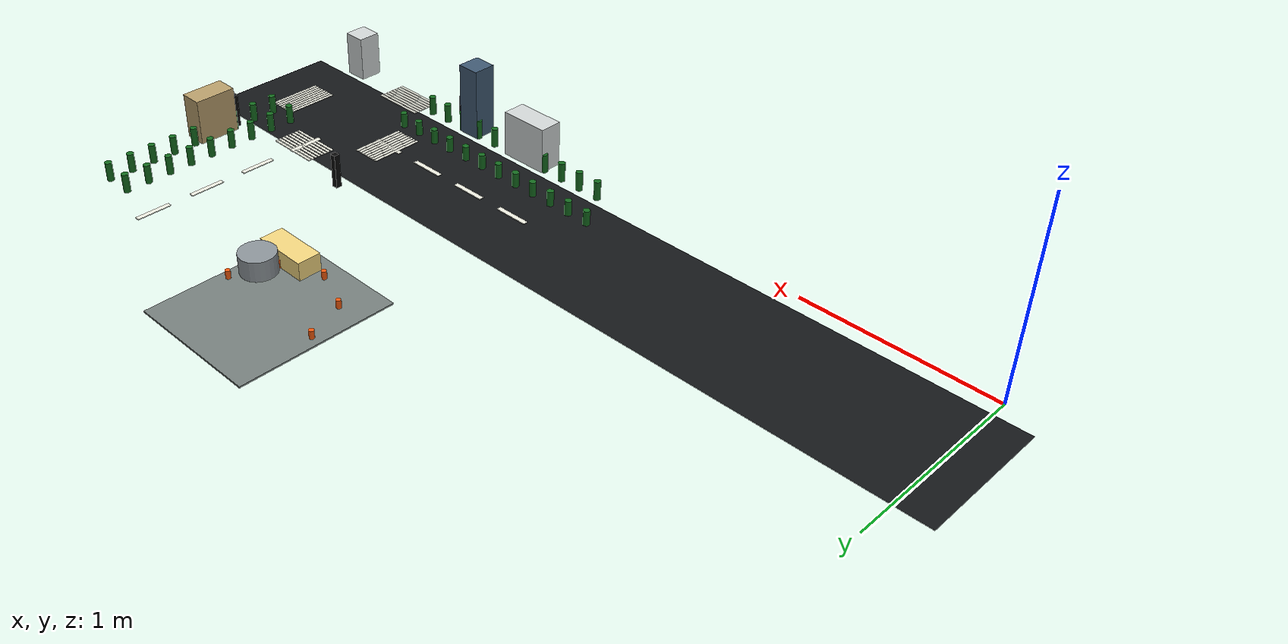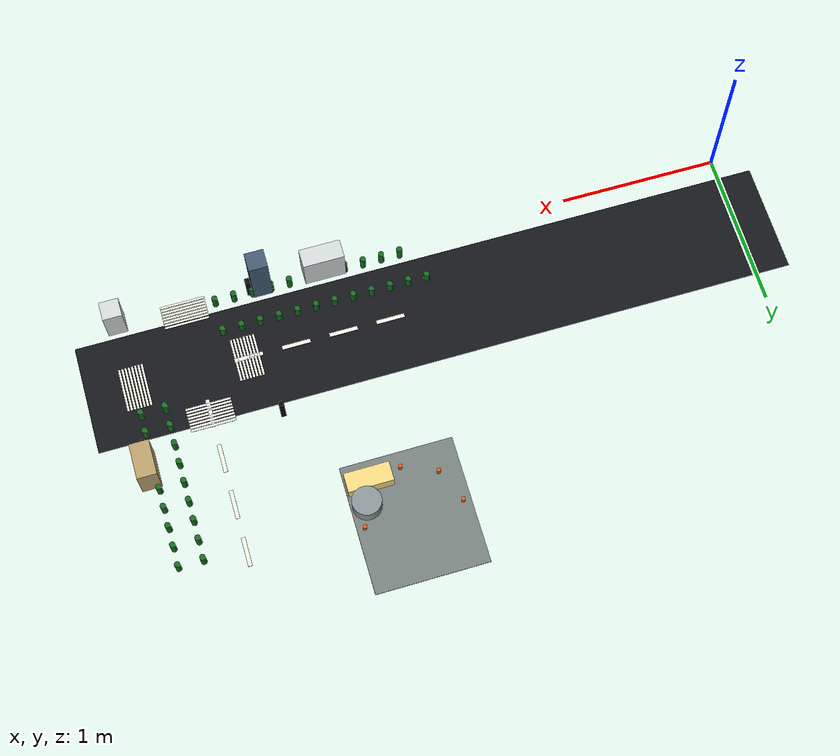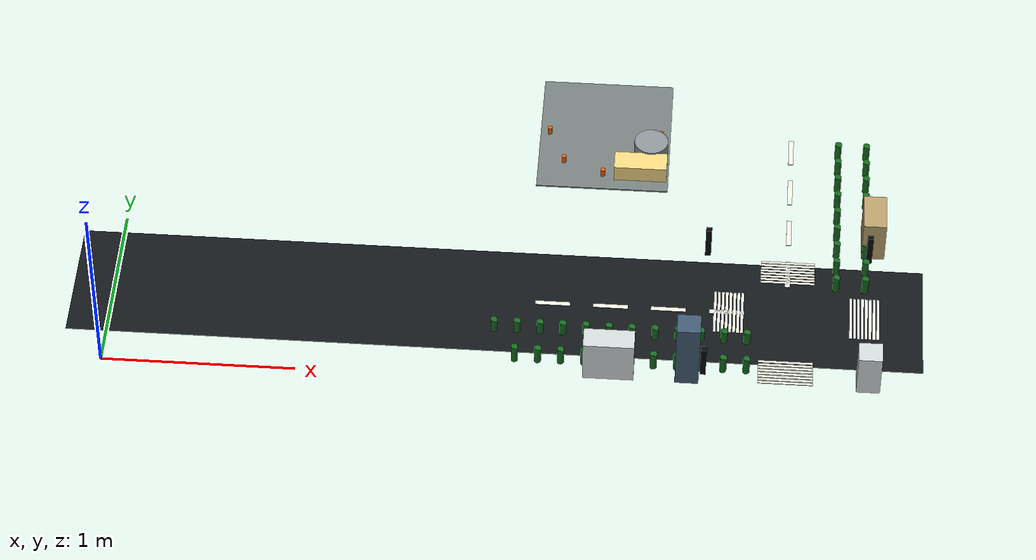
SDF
<sdf version="1.7">
 <world name="sandbox">
  <model name="RD-RING-S">
   <static>true</static>
   <pose>2.0 0.5 0.051000000000000004 0 0 0</pose>
   <link name="link">
    <collision name="collision">
     <geometry><box><size>4.4 0.7000000000000001 0.002</size></box></geometry>
    </collision>
    <visual name="visual">
     <geometry><box><size>4.4 0.7000000000000001 0.002</size></box></geometry>
     <material><ambient>0.08 0.09 0.1 1</ambient><diffuse>0.08 0.09 0.1 1</diffuse></material>
    </visual>
   </link>
  </model>
  <model name="LM-RING-E-01">
   <static>true</static>
   <pose>3.5 0.79 0.05450000000000001 0 0 0</pose>
   <link name="link">
    <collision name="collision"><geometry><box><size>0.025 0.18 0.004</size></box></geometry></collision>
    <visual name="visual">
     <geometry><box><size>0.025 0.18 0.004</size></box></geometry>
     <material><ambient>0.93 0.93 0.88 1</ambient><diffuse>0.93 0.93 0.88 1</diffuse></material>
    </visual>
   </link>
  </model>
  <model name="LM-RING-E-02">
   <static>true</static>
   <pose>3.5 1.09 0.05450000000000001 0 0 0</pose>
   <link name="link">
    <collision name="collision"><geometry><box><size>0.025 0.18 0.004</size></box></geometry></collision>
    <visual name="visual">
     <geometry><box><size>0.025 0.18 0.004</size></box></geometry>
     <material><ambient>0.93 0.93 0.88 1</ambient><diffuse>0.93 0.93 0.88 1</diffuse></material>
    </visual>
   </link>
  </model>
  <model name="LM-RING-E-03">
   <static>true</static>
   <pose>3.5 1.3900000000000001 0.05450000000000001 0 0 0</pose>
   <link name="link">
    <collision name="collision"><geometry><box><size>0.025 0.18 0.004</size></box></geometry></collision>
    <visual name="visual">
     <geometry><box><size>0.025 0.18 0.004</size></box></geometry>
     <material><ambient>0.93 0.93 0.88 1</ambient><diffuse>0.93 0.93 0.88 1</diffuse></material>
    </visual>
   </link>
  </model>
  <model name="LM-RING-E-04">
   <static>true</static>
   <pose>3.5 1.69 0.05450000000000001 0 0 0</pose>
   <link name="link">
    <collision name="collision"><geometry><box><size>0.025 0.18 0.004</size></box></geometry></collision>
    <visual name="visual">
     <geometry><box><size>0.025 0.18 0.004</size></box></geometry>
     <material><ambient>0.93 0.93 0.88 1</ambient><diffuse>0.93 0.93 0.88 1</diffuse></material>
    </visual>
   </link>
  </model>
  <model name="LM-RING-S-06">
   <static>true</static>
   <pose>2.29 0.5 0.05450000000000001 0 0 0</pose>
   <link name="link">
    <collision name="collision"><geometry><box><size>0.18 0.025 0.004</size></box></geometry></collision>
    <visual name="visual">
     <geometry><box><size>0.18 0.025 0.004</size></box></geometry>
     <material><ambient>0.93 0.93 0.88 1</ambient><diffuse>0.93 0.93 0.88 1</diffuse></material>
    </visual>
   </link>
  </model>
  <model name="LM-RING-S-07">
   <static>true</static>
   <pose>2.59 0.5 0.05450000000000001 0 0 0</pose>
   <link name="link">
    <collision name="collision"><geometry><box><size>0.18 0.025 0.004</size></box></geometry></collision>
    <visual name="visual">
     <geometry><box><size>0.18 0.025 0.004</size></box></geometry>
     <material><ambient>0.93 0.93 0.88 1</ambient><diffuse>0.93 0.93 0.88 1</diffuse></material>
    </visual>
   </link>
  </model>
  <model name="LM-RING-S-08">
   <static>true</static>
   <pose>2.89 0.5 0.05450000000000001 0 0 0</pose>
   <link name="link">
    <collision name="collision"><geometry><box><size>0.18 0.025 0.004</size></box></geometry></collision>
    <visual name="visual">
     <geometry><box><size>0.18 0.025 0.004</size></box></geometry>
     <material><ambient>0.93 0.93 0.88 1</ambient><diffuse>0.93 0.93 0.88 1</diffuse></material>
    </visual>
   </link>
  </model>
  <model name="LM-RING-S-09">
   <static>true</static>
   <pose>3.19 0.5 0.05450000000000001 0 0 0</pose>
   <link name="link">
    <collision name="collision"><geometry><box><size>0.18 0.025 0.004</size></box></geometry></collision>
    <visual name="visual">
     <geometry><box><size>0.18 0.025 0.004</size></box></geometry>
     <material><ambient>0.93 0.93 0.88 1</ambient><diffuse>0.93 0.93 0.88 1</diffuse></material>
    </visual>
   </link>
  </model>
  <model name="CW-SE-X-01">
   <static>true</static>
   <pose>3.5 0.73 0.05450000000000001 0 0 0</pose>
   <link name="link">
    <collision name="collision"><geometry><box><size>0.28 0.014 0.004</size></box></geometry></collision>
    <visual name="visual">
     <geometry><box><size>0.28 0.014 0.004</size></box></geometry>
     <material><ambient>0.93 0.93 0.88 1</ambient><diffuse>0.93 0.93 0.88 1</diffuse></material>
    </visual>
   </link>
  </model>
  <model name="CW-SE-X-02">
   <static>true</static>
   <pose>3.5 0.75 0.05450000000000001 0 0 0</pose>
   <link name="link">
    <collision name="collision"><geometry><box><size>0.28 0.014 0.004</size></box></geometry></collision>
    <visual name="visual">
     <geometry><box><size>0.28 0.014 0.004</size></box></geometry>
     <material><ambient>0.93 0.93 0.88 1</ambient><diffuse>0.93 0.93 0.88 1</diffuse></material>
    </visual>
   </link>
  </model>
  <model name="CW-SE-X-03">
   <static>true</static>
   <pose>3.5 0.77 0.05450000000000001 0 0 0</pose>
   <link name="link">
    <collision name="collision"><geometry><box><size>0.28 0.014 0.004</size></box></geometry></collision>
    <visual name="visual">
     <geometry><box><size>0.28 0.014 0.004</size></box></geometry>
     <material><ambient>0.93 0.93 0.88 1</ambient><diffuse>0.93 0.93 0.88 1</diffuse></material>
    </visual>
   </link>
  </model>
  <model name="CW-SE-X-04">
   <static>true</static>
   <pose>3.5 0.79 0.05450000000000001 0 0 0</pose>
   <link name="link">
    <collision name="collision"><geometry><box><size>0.28 0.014 0.004</size></box></geometry></collision>
    <visual name="visual">
     <geometry><box><size>0.28 0.014 0.004</size></box></geometry>
     <material><ambient>0.93 0.93 0.88 1</ambient><diffuse>0.93 0.93 0.88 1</diffuse></material>
    </visual>
   </link>
  </model>
  <model name="CW-SE-X-05">
   <static>true</static>
   <pose>3.5 0.81 0.05450000000000001 0 0 0</pose>
   <link name="link">
    <collision name="collision"><geometry><box><size>0.28 0.014 0.004</size></box></geometry></collision>
    <visual name="visual">
     <geometry><box><size>0.28 0.014 0.004</size></box></geometry>
     <material><ambient>0.93 0.93 0.88 1</ambient><diffuse>0.93 0.93 0.88 1</diffuse></material>
    </visual>
   </link>
  </model>
  <model name="CW-SE-X-06">
   <static>true</static>
   <pose>3.5 0.8300000000000001 0.05450000000000001 0 0 0</pose>
   <link name="link">
    <collision name="collision"><geometry><box><size>0.28 0.014 0.004</size></box></geometry></collision>
    <visual name="visual">
     <geometry><box><size>0.28 0.014 0.004</size></box></geometry>
     <material><ambient>0.93 0.93 0.88 1</ambient><diffuse>0.93 0.93 0.88 1</diffuse></material>
    </visual>
   </link>
  </model>
  <model name="CW-SE-X-07">
   <static>true</static>
   <pose>3.5 0.8500000000000001 0.05450000000000001 0 0 0</pose>
   <link name="link">
    <collision name="collision"><geometry><box><size>0.28 0.014 0.004</size></box></geometry></collision>
    <visual name="visual">
     <geometry><box><size>0.28 0.014 0.004</size></box></geometry>
     <material><ambient>0.93 0.93 0.88 1</ambient><diffuse>0.93 0.93 0.88 1</diffuse></material>
    </visual>
   </link>
  </model>
  <model name="CW-SE-X-08">
   <static>true</static>
   <pose>3.5 0.8700000000000001 0.05450000000000001 0 0 0</pose>
   <link name="link">
    <collision name="collision"><geometry><box><size>0.28 0.014 0.004</size></box></geometry></collision>
    <visual name="visual">
     <geometry><box><size>0.28 0.014 0.004</size></box></geometry>
     <material><ambient>0.93 0.93 0.88 1</ambient><diffuse>0.93 0.93 0.88 1</diffuse></material>
    </visual>
   </link>
  </model>
  <model name="CW-SE-Y-01">
   <static>true</static>
   <pose>3.1300000000000003 0.5 0.05450000000000001 0 0 0</pose>
   <link name="link">
    <collision name="collision"><geometry><box><size>0.014 0.28 0.004</size></box></geometry></collision>
    <visual name="visual">
     <geometry><box><size>0.014 0.28 0.004</size></box></geometry>
     <material><ambient>0.93 0.93 0.88 1</ambient><diffuse>0.93 0.93 0.88 1</diffuse></material>
    </visual>
   </link>
  </model>
  <model name="CW-SE-Y-02">
   <static>true</static>
   <pose>3.1500000000000004 0.5 0.05450000000000001 0 0 0</pose>
   <link name="link">
    <collision name="collision"><geometry><box><size>0.014 0.28 0.004</size></box></geometry></collision>
    <visual name="visual">
     <geometry><box><size>0.014 0.28 0.004</size></box></geometry>
     <material><ambient>0.93 0.93 0.88 1</ambient><diffuse>0.93 0.93 0.88 1</diffuse></material>
    </visual>
   </link>
  </model>
  <model name="CW-SE-Y-03">
   <static>true</static>
   <pose>3.1700000000000004 0.5 0.05450000000000001 0 0 0</pose>
   <link name="link">
    <collision name="collision"><geometry><box><size>0.014 0.28 0.004</size></box></geometry></collision>
    <visual name="visual">
     <geometry><box><size>0.014 0.28 0.004</size></box></geometry>
     <material><ambient>0.93 0.93 0.88 1</ambient><diffuse>0.93 0.93 0.88 1</diffuse></material>
    </visual>
   </link>
  </model>
  <model name="CW-SE-Y-04">
   <static>true</static>
   <pose>3.1900000000000004 0.5 0.05450000000000001 0 0 0</pose>
   <link name="link">
    <collision name="collision"><geometry><box><size>0.014 0.28 0.004</size></box></geometry></collision>
    <visual name="visual">
     <geometry><box><size>0.014 0.28 0.004</size></box></geometry>
     <material><ambient>0.93 0.93 0.88 1</ambient><diffuse>0.93 0.93 0.88 1</diffuse></material>
    </visual>
   </link>
  </model>
  <model name="CW-SE-Y-05">
   <static>true</static>
   <pose>3.21 0.5 0.05450000000000001 0 0 0</pose>
   <link name="link">
    <collision name="collision"><geometry><box><size>0.014 0.28 0.004</size></box></geometry></collision>
    <visual name="visual">
     <geometry><box><size>0.014 0.28 0.004</size></box></geometry>
     <material><ambient>0.93 0.93 0.88 1</ambient><diffuse>0.93 0.93 0.88 1</diffuse></material>
    </visual>
   </link>
  </model>
  <model name="CW-SE-Y-06">
   <static>true</static>
   <pose>3.23 0.5 0.05450000000000001 0 0 0</pose>
   <link name="link">
    <collision name="collision"><geometry><box><size>0.014 0.28 0.004</size></box></geometry></collision>
    <visual name="visual">
     <geometry><box><size>0.014 0.28 0.004</size></box></geometry>
     <material><ambient>0.93 0.93 0.88 1</ambient><diffuse>0.93 0.93 0.88 1</diffuse></material>
    </visual>
   </link>
  </model>
  <model name="CW-SE-Y-07">
   <static>true</static>
   <pose>3.25 0.5 0.05450000000000001 0 0 0</pose>
   <link name="link">
    <collision name="collision"><geometry><box><size>0.014 0.28 0.004</size></box></geometry></collision>
    <visual name="visual">
     <geometry><box><size>0.014 0.28 0.004</size></box></geometry>
     <material><ambient>0.93 0.93 0.88 1</ambient><diffuse>0.93 0.93 0.88 1</diffuse></material>
    </visual>
   </link>
  </model>
  <model name="CW-SE-Y-08">
   <static>true</static>
   <pose>3.27 0.5 0.05450000000000001 0 0 0</pose>
   <link name="link">
    <collision name="collision"><geometry><box><size>0.014 0.28 0.004</size></box></geometry></collision>
    <visual name="visual">
     <geometry><box><size>0.014 0.28 0.004</size></box></geometry>
     <material><ambient>0.93 0.93 0.88 1</ambient><diffuse>0.93 0.93 0.88 1</diffuse></material>
    </visual>
   </link>
  </model>
  <model name="CW-EXT-E-S-01">
   <static>true</static>
   <pose>3.5 0.03 0.05450000000000001 0 0 0</pose>
   <link name="link">
    <collision name="collision"><geometry><box><size>0.28 0.014 0.004</size></box></geometry></collision>
    <visual name="visual">
     <geometry><box><size>0.28 0.014 0.004</size></box></geometry>
     <material><ambient>0.93 0.93 0.88 1</ambient><diffuse>0.93 0.93 0.88 1</diffuse></material>
    </visual>
   </link>
  </model>
  <model name="CW-EXT-E-S-02">
   <static>true</static>
   <pose>3.5 0.05 0.05450000000000001 0 0 0</pose>
   <link name="link">
    <collision name="collision"><geometry><box><size>0.28 0.014 0.004</size></box></geometry></collision>
    <visual name="visual">
     <geometry><box><size>0.28 0.014 0.004</size></box></geometry>
     <material><ambient>0.93 0.93 0.88 1</ambient><diffuse>0.93 0.93 0.88 1</diffuse></material>
    </visual>
   </link>
  </model>
  <model name="CW-EXT-E-S-03">
   <static>true</static>
   <pose>3.5 0.07 0.05450000000000001 0 0 0</pose>
   <link name="link">
    <collision name="collision"><geometry><box><size>0.28 0.014 0.004</size></box></geometry></collision>
    <visual name="visual">
     <geometry><box><size>0.28 0.014 0.004</size></box></geometry>
     <material><ambient>0.93 0.93 0.88 1</ambient><diffuse>0.93 0.93 0.88 1</diffuse></material>
    </visual>
   </link>
  </model>
  <model name="CW-EXT-E-S-04">
   <static>true</static>
   <pose>3.5 0.09000000000000001 0.05450000000000001 0 0 0</pose>
   <link name="link">
    <collision name="collision"><geometry><box><size>0.28 0.014 0.004</size></box></geometry></collision>
    <visual name="visual">
     <geometry><box><size>0.28 0.014 0.004</size></box></geometry>
     <material><ambient>0.93 0.93 0.88 1</ambient><diffuse>0.93 0.93 0.88 1</diffuse></material>
    </visual>
   </link>
  </model>
  <model name="CW-EXT-E-S-05">
   <static>true</static>
   <pose>3.5 0.11 0.05450000000000001 0 0 0</pose>
   <link name="link">
    <collision name="collision"><geometry><box><size>0.28 0.014 0.004</size></box></geometry></collision>
    <visual name="visual">
     <geometry><box><size>0.28 0.014 0.004</size></box></geometry>
     <material><ambient>0.93 0.93 0.88 1</ambient><diffuse>0.93 0.93 0.88 1</diffuse></material>
    </visual>
   </link>
  </model>
  <model name="CW-EXT-E-S-06">
   <static>true</static>
   <pose>3.5 0.13 0.05450000000000001 0 0 0</pose>
   <link name="link">
    <collision name="collision"><geometry><box><size>0.28 0.014 0.004</size></box></geometry></collision>
    <visual name="visual">
     <geometry><box><size>0.28 0.014 0.004</size></box></geometry>
     <material><ambient>0.93 0.93 0.88 1</ambient><diffuse>0.93 0.93 0.88 1</diffuse></material>
    </visual>
   </link>
  </model>
  <model name="CW-EXT-E-S-07">
   <static>true</static>
   <pose>3.5 0.15000000000000002 0.05450000000000001 0 0 0</pose>
   <link name="link">
    <collision name="collision"><geometry><box><size>0.28 0.014 0.004</size></box></geometry></collision>
    <visual name="visual">
     <geometry><box><size>0.28 0.014 0.004</size></box></geometry>
     <material><ambient>0.93 0.93 0.88 1</ambient><diffuse>0.93 0.93 0.88 1</diffuse></material>
    </visual>
   </link>
  </model>
  <model name="CW-EXT-E-S-08">
   <static>true</static>
   <pose>3.5 0.17 0.05450000000000001 0 0 0</pose>
   <link name="link">
    <collision name="collision"><geometry><box><size>0.28 0.014 0.004</size></box></geometry></collision>
    <visual name="visual">
     <geometry><box><size>0.28 0.014 0.004</size></box></geometry>
     <material><ambient>0.93 0.93 0.88 1</ambient><diffuse>0.93 0.93 0.88 1</diffuse></material>
    </visual>
   </link>
  </model>
  <model name="CW-EXT-S-E-01">
   <static>true</static>
   <pose>3.83 0.5 0.05450000000000001 0 0 0</pose>
   <link name="link">
    <collision name="collision"><geometry><box><size>0.014 0.28 0.004</size></box></geometry></collision>
    <visual name="visual">
     <geometry><box><size>0.014 0.28 0.004</size></box></geometry>
     <material><ambient>0.93 0.93 0.88 1</ambient><diffuse>0.93 0.93 0.88 1</diffuse></material>
    </visual>
   </link>
  </model>
  <model name="CW-EXT-S-E-02">
   <static>true</static>
   <pose>3.85 0.5 0.05450000000000001 0 0 0</pose>
   <link name="link">
    <collision name="collision"><geometry><box><size>0.014 0.28 0.004</size></box></geometry></collision>
    <visual name="visual">
     <geometry><box><size>0.014 0.28 0.004</size></box></geometry>
     <material><ambient>0.93 0.93 0.88 1</ambient><diffuse>0.93 0.93 0.88 1</diffuse></material>
    </visual>
   </link>
  </model>
  <model name="CW-EXT-S-E-03">
   <static>true</static>
   <pose>3.87 0.5 0.05450000000000001 0 0 0</pose>
   <link name="link">
    <collision name="collision"><geometry><box><size>0.014 0.28 0.004</size></box></geometry></collision>
    <visual name="visual">
     <geometry><box><size>0.014 0.28 0.004</size></box></geometry>
     <material><ambient>0.93 0.93 0.88 1</ambient><diffuse>0.93 0.93 0.88 1</diffuse></material>
    </visual>
   </link>
  </model>
  <model name="CW-EXT-S-E-04">
   <static>true</static>
   <pose>3.89 0.5 0.05450000000000001 0 0 0</pose>
   <link name="link">
    <collision name="collision"><geometry><box><size>0.014 0.28 0.004</size></box></geometry></collision>
    <visual name="visual">
     <geometry><box><size>0.014 0.28 0.004</size></box></geometry>
     <material><ambient>0.93 0.93 0.88 1</ambient><diffuse>0.93 0.93 0.88 1</diffuse></material>
    </visual>
   </link>
  </model>
  <model name="CW-EXT-S-E-05">
   <static>true</static>
   <pose>3.9099999999999997 0.5 0.05450000000000001 0 0 0</pose>
   <link name="link">
    <collision name="collision"><geometry><box><size>0.014 0.28 0.004</size></box></geometry></collision>
    <visual name="visual">
     <geometry><box><size>0.014 0.28 0.004</size></box></geometry>
     <material><ambient>0.93 0.93 0.88 1</ambient><diffuse>0.93 0.93 0.88 1</diffuse></material>
    </visual>
   </link>
  </model>
  <model name="CW-EXT-S-E-06">
   <static>true</static>
   <pose>3.9299999999999997 0.5 0.05450000000000001 0 0 0</pose>
   <link name="link">
    <collision name="collision"><geometry><box><size>0.014 0.28 0.004</size></box></geometry></collision>
    <visual name="visual">
     <geometry><box><size>0.014 0.28 0.004</size></box></geometry>
     <material><ambient>0.93 0.93 0.88 1</ambient><diffuse>0.93 0.93 0.88 1</diffuse></material>
    </visual>
   </link>
  </model>
  <model name="CW-EXT-S-E-07">
   <static>true</static>
   <pose>3.9499999999999997 0.5 0.05450000000000001 0 0 0</pose>
   <link name="link">
    <collision name="collision"><geometry><box><size>0.014 0.28 0.004</size></box></geometry></collision>
    <visual name="visual">
     <geometry><box><size>0.014 0.28 0.004</size></box></geometry>
     <material><ambient>0.93 0.93 0.88 1</ambient><diffuse>0.93 0.93 0.88 1</diffuse></material>
    </visual>
   </link>
  </model>
  <model name="CW-EXT-S-E-08">
   <static>true</static>
   <pose>3.9699999999999998 0.5 0.05450000000000001 0 0 0</pose>
   <link name="link">
    <collision name="collision"><geometry><box><size>0.014 0.28 0.004</size></box></geometry></collision>
    <visual name="visual">
     <geometry><box><size>0.014 0.28 0.004</size></box></geometry>
     <material><ambient>0.93 0.93 0.88 1</ambient><diffuse>0.93 0.93 0.88 1</diffuse></material>
    </visual>
   </link>
  </model>
  <model name="IND-SE-PAD">
   <static>true</static>
   <pose>2.5 1.75 0.054000000000000006 0 0 0</pose>
   <link name="link">
    <collision name="collision">
     <geometry><box><size>0.7000000000000001 0.8 0.008</size></box></geometry>
    </collision>
    <visual name="visual">
     <geometry><box><size>0.7000000000000001 0.8 0.008</size></box></geometry>
     <material><ambient>0.46 0.5 0.49 1</ambient><diffuse>0.46 0.5 0.49 1</diffuse></material>
    </visual>
   </link>
  </model>
  <model name="SE-T03">
   <static>true</static>
   <pose>2.75 1.62 0.10500000000000001 0 0 0</pose>
   <link name="link">
    <collision name="collision">
     <geometry><cylinder><radius>0.09</radius><length>0.11</length></cylinder></geometry>
    </collision>
    <visual name="visual">
     <geometry><cylinder><radius>0.09</radius><length>0.11</length></cylinder></geometry>
     <material><ambient>0.55 0.58 0.6 1</ambient><diffuse>0.55 0.58 0.6 1</diffuse></material>
    </visual>
   </link>
  </model>
  <model name="SE-B02">
   <static>true</static>
   <pose>2.7 1.48 0.1 0 0 0</pose>
   <link name="link">
    <collision name="collision"><geometry><box><size>0.28 0.12 0.1</size></box></geometry></collision>
    <visual name="visual">
     <geometry><box><size>0.28 0.12 0.1</size></box></geometry>
     <material><ambient>0.95 0.84 0.5 1</ambient><diffuse>0.95 0.84 0.5 1</diffuse></material>
    </visual>
   </link>
  </model>
  <model name="BLD-R01">
   <static>true</static>
   <pose>3.94 1.05 0.16999999999999998 0 0 0</pose>
   <link name="link">
    <collision name="collision"><geometry><box><size>0.12 0.22 0.24</size></box></geometry></collision>
    <visual name="visual">
     <geometry><box><size>0.12 0.22 0.24</size></box></geometry>
     <material><ambient>0.72 0.62 0.42 1</ambient><diffuse>0.72 0.62 0.42 1</diffuse></material>
    </visual>
   </link>
  </model>
  <model name="BLD-B04">
   <static>true</static>
   <pose>2.6 0.06 0.16999999999999998 0 0 0</pose>
   <link name="link">
    <collision name="collision"><geometry><box><size>0.26 0.12 0.24</size></box></geometry></collision>
    <visual name="visual">
     <geometry><box><size>0.26 0.12 0.24</size></box></geometry>
     <material><ambient>0.82 0.84 0.84 1</ambient><diffuse>0.82 0.84 0.84 1</diffuse></material>
    </visual>
   </link>
  </model>
  <model name="BLD-B05">
   <static>true</static>
   <pose>3.0 0.06 0.24 0 0 0</pose>
   <link name="link">
    <collision name="collision"><geometry><box><size>0.12 0.12 0.38</size></box></geometry></collision>
    <visual name="visual">
     <geometry><box><size>0.12 0.12 0.38</size></box></geometry>
     <material><ambient>0.25 0.35 0.45 1</ambient><diffuse>0.25 0.35 0.45 1</diffuse></material>
    </visual>
   </link>
  </model>
  <model name="BLD-B06">
   <static>true</static>
   <pose>3.92 0.06 0.16999999999999998 0 0 0</pose>
   <link name="link">
    <collision name="collision"><geometry><box><size>0.12 0.12 0.24</size></box></geometry></collision>
    <visual name="visual">
     <geometry><box><size>0.12 0.12 0.24</size></box></geometry>
     <material><ambient>0.82 0.84 0.84 1</ambient><diffuse>0.82 0.84 0.84 1</diffuse></material>
    </visual>
   </link>
  </model>
  <model name="TR-R01-01">
   <static>true</static>
   <pose>3.9 0.7000000000000001 0.1 0 0 0</pose>
   <link name="link">
    <collision name="collision">
     <geometry><cylinder><radius>0.0175</radius><length>0.1</length></cylinder></geometry>
    </collision>
    <visual name="visual">
     <geometry><cylinder><radius>0.0175</radius><length>0.1</length></cylinder></geometry>
     <material><ambient>0.08 0.42 0.12 1</ambient><diffuse>0.08 0.42 0.12 1</diffuse></material>
    </visual>
   </link>
  </model>
  <model name="TR-R01-02">
   <static>true</static>
   <pose>3.9 0.8222222222222223 0.1 0 0 0</pose>
   <link name="link">
    <collision name="collision">
     <geometry><cylinder><radius>0.0175</radius><length>0.1</length></cylinder></geometry>
    </collision>
    <visual name="visual">
     <geometry><cylinder><radius>0.0175</radius><length>0.1</length></cylinder></geometry>
     <material><ambient>0.08 0.42 0.12 1</ambient><diffuse>0.08 0.42 0.12 1</diffuse></material>
    </visual>
   </link>
  </model>
  <model name="TR-R01-03">
   <static>true</static>
   <pose>3.9 0.9444444444444444 0.1 0 0 0</pose>
   <link name="link">
    <collision name="collision">
     <geometry><cylinder><radius>0.0175</radius><length>0.1</length></cylinder></geometry>
    </collision>
    <visual name="visual">
     <geometry><cylinder><radius>0.0175</radius><length>0.1</length></cylinder></geometry>
     <material><ambient>0.08 0.42 0.12 1</ambient><diffuse>0.08 0.42 0.12 1</diffuse></material>
    </visual>
   </link>
  </model>
  <model name="TR-R01-04">
   <static>true</static>
   <pose>3.9 1.0666666666666667 0.1 0 0 0</pose>
   <link name="link">
    <collision name="collision">
     <geometry><cylinder><radius>0.0175</radius><length>0.1</length></cylinder></geometry>
    </collision>
    <visual name="visual">
     <geometry><cylinder><radius>0.0175</radius><length>0.1</length></cylinder></geometry>
     <material><ambient>0.08 0.42 0.12 1</ambient><diffuse>0.08 0.42 0.12 1</diffuse></material>
    </visual>
   </link>
  </model>
  <model name="TR-R01-05">
   <static>true</static>
   <pose>3.9 1.1888888888888889 0.1 0 0 0</pose>
   <link name="link">
    <collision name="collision">
     <geometry><cylinder><radius>0.0175</radius><length>0.1</length></cylinder></geometry>
    </collision>
    <visual name="visual">
     <geometry><cylinder><radius>0.0175</radius><length>0.1</length></cylinder></geometry>
     <material><ambient>0.08 0.42 0.12 1</ambient><diffuse>0.08 0.42 0.12 1</diffuse></material>
    </visual>
   </link>
  </model>
  <model name="TR-R01-06">
   <static>true</static>
   <pose>3.9 1.3111111111111111 0.1 0 0 0</pose>
   <link name="link">
    <collision name="collision">
     <geometry><cylinder><radius>0.0175</radius><length>0.1</length></cylinder></geometry>
    </collision>
    <visual name="visual">
     <geometry><cylinder><radius>0.0175</radius><length>0.1</length></cylinder></geometry>
     <material><ambient>0.08 0.42 0.12 1</ambient><diffuse>0.08 0.42 0.12 1</diffuse></material>
    </visual>
   </link>
  </model>
  <model name="TR-R01-07">
   <static>true</static>
   <pose>3.9 1.4333333333333333 0.1 0 0 0</pose>
   <link name="link">
    <collision name="collision">
     <geometry><cylinder><radius>0.0175</radius><length>0.1</length></cylinder></geometry>
    </collision>
    <visual name="visual">
     <geometry><cylinder><radius>0.0175</radius><length>0.1</length></cylinder></geometry>
     <material><ambient>0.08 0.42 0.12 1</ambient><diffuse>0.08 0.42 0.12 1</diffuse></material>
    </visual>
   </link>
  </model>
  <model name="TR-R01-08">
   <static>true</static>
   <pose>3.9 1.5555555555555556 0.1 0 0 0</pose>
   <link name="link">
    <collision name="collision">
     <geometry><cylinder><radius>0.0175</radius><length>0.1</length></cylinder></geometry>
    </collision>
    <visual name="visual">
     <geometry><cylinder><radius>0.0175</radius><length>0.1</length></cylinder></geometry>
     <material><ambient>0.08 0.42 0.12 1</ambient><diffuse>0.08 0.42 0.12 1</diffuse></material>
    </visual>
   </link>
  </model>
  <model name="TR-R01-09">
   <static>true</static>
   <pose>3.9 1.6777777777777776 0.1 0 0 0</pose>
   <link name="link">
    <collision name="collision">
     <geometry><cylinder><radius>0.0175</radius><length>0.1</length></cylinder></geometry>
    </collision>
    <visual name="visual">
     <geometry><cylinder><radius>0.0175</radius><length>0.1</length></cylinder></geometry>
     <material><ambient>0.08 0.42 0.12 1</ambient><diffuse>0.08 0.42 0.12 1</diffuse></material>
    </visual>
   </link>
  </model>
  <model name="TR-R02-01">
   <static>true</static>
   <pose>3.75 0.7000000000000001 0.1 0 0 0</pose>
   <link name="link">
    <collision name="collision">
     <geometry><cylinder><radius>0.0175</radius><length>0.1</length></cylinder></geometry>
    </collision>
    <visual name="visual">
     <geometry><cylinder><radius>0.0175</radius><length>0.1</length></cylinder></geometry>
     <material><ambient>0.08 0.42 0.12 1</ambient><diffuse>0.08 0.42 0.12 1</diffuse></material>
    </visual>
   </link>
  </model>
  <model name="TR-R02-02">
   <static>true</static>
   <pose>3.75 0.8222222222222223 0.1 0 0 0</pose>
   <link name="link">
    <collision name="collision">
     <geometry><cylinder><radius>0.0175</radius><length>0.1</length></cylinder></geometry>
    </collision>
    <visual name="visual">
     <geometry><cylinder><radius>0.0175</radius><length>0.1</length></cylinder></geometry>
     <material><ambient>0.08 0.42 0.12 1</ambient><diffuse>0.08 0.42 0.12 1</diffuse></material>
    </visual>
   </link>
  </model>
  <model name="TR-R02-03">
   <static>true</static>
   <pose>3.75 0.9444444444444444 0.1 0 0 0</pose>
   <link name="link">
    <collision name="collision">
     <geometry><cylinder><radius>0.0175</radius><length>0.1</length></cylinder></geometry>
    </collision>
    <visual name="visual">
     <geometry><cylinder><radius>0.0175</radius><length>0.1</length></cylinder></geometry>
     <material><ambient>0.08 0.42 0.12 1</ambient><diffuse>0.08 0.42 0.12 1</diffuse></material>
    </visual>
   </link>
  </model>
  <model name="TR-R02-04">
   <static>true</static>
   <pose>3.75 1.0666666666666667 0.1 0 0 0</pose>
   <link name="link">
    <collision name="collision">
     <geometry><cylinder><radius>0.0175</radius><length>0.1</length></cylinder></geometry>
    </collision>
    <visual name="visual">
     <geometry><cylinder><radius>0.0175</radius><length>0.1</length></cylinder></geometry>
     <material><ambient>0.08 0.42 0.12 1</ambient><diffuse>0.08 0.42 0.12 1</diffuse></material>
    </visual>
   </link>
  </model>
  <model name="TR-R02-05">
   <static>true</static>
   <pose>3.75 1.1888888888888889 0.1 0 0 0</pose>
   <link name="link">
    <collision name="collision">
     <geometry><cylinder><radius>0.0175</radius><length>0.1</length></cylinder></geometry>
    </collision>
    <visual name="visual">
     <geometry><cylinder><radius>0.0175</radius><length>0.1</length></cylinder></geometry>
     <material><ambient>0.08 0.42 0.12 1</ambient><diffuse>0.08 0.42 0.12 1</diffuse></material>
    </visual>
   </link>
  </model>
  <model name="TR-R02-06">
   <static>true</static>
   <pose>3.75 1.3111111111111111 0.1 0 0 0</pose>
   <link name="link">
    <collision name="collision">
     <geometry><cylinder><radius>0.0175</radius><length>0.1</length></cylinder></geometry>
    </collision>
    <visual name="visual">
     <geometry><cylinder><radius>0.0175</radius><length>0.1</length></cylinder></geometry>
     <material><ambient>0.08 0.42 0.12 1</ambient><diffuse>0.08 0.42 0.12 1</diffuse></material>
    </visual>
   </link>
  </model>
  <model name="TR-R02-07">
   <static>true</static>
   <pose>3.75 1.4333333333333333 0.1 0 0 0</pose>
   <link name="link">
    <collision name="collision">
     <geometry><cylinder><radius>0.0175</radius><length>0.1</length></cylinder></geometry>
    </collision>
    <visual name="visual">
     <geometry><cylinder><radius>0.0175</radius><length>0.1</length></cylinder></geometry>
     <material><ambient>0.08 0.42 0.12 1</ambient><diffuse>0.08 0.42 0.12 1</diffuse></material>
    </visual>
   </link>
  </model>
  <model name="TR-R02-08">
   <static>true</static>
   <pose>3.75 1.5555555555555556 0.1 0 0 0</pose>
   <link name="link">
    <collision name="collision">
     <geometry><cylinder><radius>0.0175</radius><length>0.1</length></cylinder></geometry>
    </collision>
    <visual name="visual">
     <geometry><cylinder><radius>0.0175</radius><length>0.1</length></cylinder></geometry>
     <material><ambient>0.08 0.42 0.12 1</ambient><diffuse>0.08 0.42 0.12 1</diffuse></material>
    </visual>
   </link>
  </model>
  <model name="TR-R02-09">
   <static>true</static>
   <pose>3.75 1.6777777777777776 0.1 0 0 0</pose>
   <link name="link">
    <collision name="collision">
     <geometry><cylinder><radius>0.0175</radius><length>0.1</length></cylinder></geometry>
    </collision>
    <visual name="visual">
     <geometry><cylinder><radius>0.0175</radius><length>0.1</length></cylinder></geometry>
     <material><ambient>0.08 0.42 0.12 1</ambient><diffuse>0.08 0.42 0.12 1</diffuse></material>
    </visual>
   </link>
  </model>
  <model name="TR-F01-13">
   <static>true</static>
   <pose>2.118181818181818 0.1 0.1 0 0 0</pose>
   <link name="link">
    <collision name="collision">
     <geometry><cylinder><radius>0.0175</radius><length>0.1</length></cylinder></geometry>
    </collision>
    <visual name="visual">
     <geometry><cylinder><radius>0.0175</radius><length>0.1</length></cylinder></geometry>
     <material><ambient>0.08 0.42 0.12 1</ambient><diffuse>0.08 0.42 0.12 1</diffuse></material>
    </visual>
   </link>
  </model>
  <model name="TR-F01-14">
   <static>true</static>
   <pose>2.2363636363636368 0.1 0.1 0 0 0</pose>
   <link name="link">
    <collision name="collision">
     <geometry><cylinder><radius>0.0175</radius><length>0.1</length></cylinder></geometry>
    </collision>
    <visual name="visual">
     <geometry><cylinder><radius>0.0175</radius><length>0.1</length></cylinder></geometry>
     <material><ambient>0.08 0.42 0.12 1</ambient><diffuse>0.08 0.42 0.12 1</diffuse></material>
    </visual>
   </link>
  </model>
  <model name="TR-F01-15">
   <static>true</static>
   <pose>2.3545454545454545 0.1 0.1 0 0 0</pose>
   <link name="link">
    <collision name="collision">
     <geometry><cylinder><radius>0.0175</radius><length>0.1</length></cylinder></geometry>
    </collision>
    <visual name="visual">
     <geometry><cylinder><radius>0.0175</radius><length>0.1</length></cylinder></geometry>
     <material><ambient>0.08 0.42 0.12 1</ambient><diffuse>0.08 0.42 0.12 1</diffuse></material>
    </visual>
   </link>
  </model>
  <model name="TR-F01-16">
   <static>true</static>
   <pose>2.4727272727272727 0.1 0.1 0 0 0</pose>
   <link name="link">
    <collision name="collision">
     <geometry><cylinder><radius>0.0175</radius><length>0.1</length></cylinder></geometry>
    </collision>
    <visual name="visual">
     <geometry><cylinder><radius>0.0175</radius><length>0.1</length></cylinder></geometry>
     <material><ambient>0.08 0.42 0.12 1</ambient><diffuse>0.08 0.42 0.12 1</diffuse></material>
    </visual>
   </link>
  </model>
  <model name="TR-F01-17">
   <static>true</static>
   <pose>2.5909090909090913 0.1 0.1 0 0 0</pose>
   <link name="link">
    <collision name="collision">
     <geometry><cylinder><radius>0.0175</radius><length>0.1</length></cylinder></geometry>
    </collision>
    <visual name="visual">
     <geometry><cylinder><radius>0.0175</radius><length>0.1</length></cylinder></geometry>
     <material><ambient>0.08 0.42 0.12 1</ambient><diffuse>0.08 0.42 0.12 1</diffuse></material>
    </visual>
   </link>
  </model>
  <model name="TR-F01-18">
   <static>true</static>
   <pose>2.7090909090909094 0.1 0.1 0 0 0</pose>
   <link name="link">
    <collision name="collision">
     <geometry><cylinder><radius>0.0175</radius><length>0.1</length></cylinder></geometry>
    </collision>
    <visual name="visual">
     <geometry><cylinder><radius>0.0175</radius><length>0.1</length></cylinder></geometry>
     <material><ambient>0.08 0.42 0.12 1</ambient><diffuse>0.08 0.42 0.12 1</diffuse></material>
    </visual>
   </link>
  </model>
  <model name="TR-F01-19">
   <static>true</static>
   <pose>2.8272727272727276 0.1 0.1 0 0 0</pose>
   <link name="link">
    <collision name="collision">
     <geometry><cylinder><radius>0.0175</radius><length>0.1</length></cylinder></geometry>
    </collision>
    <visual name="visual">
     <geometry><cylinder><radius>0.0175</radius><length>0.1</length></cylinder></geometry>
     <material><ambient>0.08 0.42 0.12 1</ambient><diffuse>0.08 0.42 0.12 1</diffuse></material>
    </visual>
   </link>
  </model>
  <model name="TR-F01-20">
   <static>true</static>
   <pose>2.9454545454545458 0.1 0.1 0 0 0</pose>
   <link name="link">
    <collision name="collision">
     <geometry><cylinder><radius>0.0175</radius><length>0.1</length></cylinder></geometry>
    </collision>
    <visual name="visual">
     <geometry><cylinder><radius>0.0175</radius><length>0.1</length></cylinder></geometry>
     <material><ambient>0.08 0.42 0.12 1</ambient><diffuse>0.08 0.42 0.12 1</diffuse></material>
    </visual>
   </link>
  </model>
  <model name="TR-F01-21">
   <static>true</static>
   <pose>3.063636363636364 0.1 0.1 0 0 0</pose>
   <link name="link">
    <collision name="collision">
     <geometry><cylinder><radius>0.0175</radius><length>0.1</length></cylinder></geometry>
    </collision>
    <visual name="visual">
     <geometry><cylinder><radius>0.0175</radius><length>0.1</length></cylinder></geometry>
     <material><ambient>0.08 0.42 0.12 1</ambient><diffuse>0.08 0.42 0.12 1</diffuse></material>
    </visual>
   </link>
  </model>
  <model name="TR-F01-22">
   <static>true</static>
   <pose>3.181818181818182 0.1 0.1 0 0 0</pose>
   <link name="link">
    <collision name="collision">
     <geometry><cylinder><radius>0.0175</radius><length>0.1</length></cylinder></geometry>
    </collision>
    <visual name="visual">
     <geometry><cylinder><radius>0.0175</radius><length>0.1</length></cylinder></geometry>
     <material><ambient>0.08 0.42 0.12 1</ambient><diffuse>0.08 0.42 0.12 1</diffuse></material>
    </visual>
   </link>
  </model>
  <model name="TR-F01-23">
   <static>true</static>
   <pose>3.3000000000000003 0.1 0.1 0 0 0</pose>
   <link name="link">
    <collision name="collision">
     <geometry><cylinder><radius>0.0175</radius><length>0.1</length></cylinder></geometry>
    </collision>
    <visual name="visual">
     <geometry><cylinder><radius>0.0175</radius><length>0.1</length></cylinder></geometry>
     <material><ambient>0.08 0.42 0.12 1</ambient><diffuse>0.08 0.42 0.12 1</diffuse></material>
    </visual>
   </link>
  </model>
  <model name="TR-F02-12">
   <static>true</static>
   <pose>2.0 0.3 0.09 0 0 0</pose>
   <link name="link">
    <collision name="collision">
     <geometry><cylinder><radius>0.0175</radius><length>0.08</length></cylinder></geometry>
    </collision>
    <visual name="visual">
     <geometry><cylinder><radius>0.0175</radius><length>0.08</length></cylinder></geometry>
     <material><ambient>0.08 0.42 0.12 1</ambient><diffuse>0.08 0.42 0.12 1</diffuse></material>
    </visual>
   </link>
  </model>
  <model name="TR-F02-13">
   <static>true</static>
   <pose>2.118181818181818 0.3 0.09 0 0 0</pose>
   <link name="link">
    <collision name="collision">
     <geometry><cylinder><radius>0.0175</radius><length>0.08</length></cylinder></geometry>
    </collision>
    <visual name="visual">
     <geometry><cylinder><radius>0.0175</radius><length>0.08</length></cylinder></geometry>
     <material><ambient>0.08 0.42 0.12 1</ambient><diffuse>0.08 0.42 0.12 1</diffuse></material>
    </visual>
   </link>
  </model>
  <model name="TR-F02-14">
   <static>true</static>
   <pose>2.2363636363636368 0.3 0.09 0 0 0</pose>
   <link name="link">
    <collision name="collision">
     <geometry><cylinder><radius>0.0175</radius><length>0.08</length></cylinder></geometry>
    </collision>
    <visual name="visual">
     <geometry><cylinder><radius>0.0175</radius><length>0.08</length></cylinder></geometry>
     <material><ambient>0.08 0.42 0.12 1</ambient><diffuse>0.08 0.42 0.12 1</diffuse></material>
    </visual>
   </link>
  </model>
  <model name="TR-F02-15">
   <static>true</static>
   <pose>2.3545454545454545 0.3 0.09 0 0 0</pose>
   <link name="link">
    <collision name="collision">
     <geometry><cylinder><radius>0.0175</radius><length>0.08</length></cylinder></geometry>
    </collision>
    <visual name="visual">
     <geometry><cylinder><radius>0.0175</radius><length>0.08</length></cylinder></geometry>
     <material><ambient>0.08 0.42 0.12 1</ambient><diffuse>0.08 0.42 0.12 1</diffuse></material>
    </visual>
   </link>
  </model>
  <model name="TR-F02-16">
   <static>true</static>
   <pose>2.4727272727272727 0.3 0.09 0 0 0</pose>
   <link name="link">
    <collision name="collision">
     <geometry><cylinder><radius>0.0175</radius><length>0.08</length></cylinder></geometry>
    </collision>
    <visual name="visual">
     <geometry><cylinder><radius>0.0175</radius><length>0.08</length></cylinder></geometry>
     <material><ambient>0.08 0.42 0.12 1</ambient><diffuse>0.08 0.42 0.12 1</diffuse></material>
    </visual>
   </link>
  </model>
  <model name="TR-F02-17">
   <static>true</static>
   <pose>2.5909090909090913 0.3 0.09 0 0 0</pose>
   <link name="link">
    <collision name="collision">
     <geometry><cylinder><radius>0.0175</radius><length>0.08</length></cylinder></geometry>
    </collision>
    <visual name="visual">
     <geometry><cylinder><radius>0.0175</radius><length>0.08</length></cylinder></geometry>
     <material><ambient>0.08 0.42 0.12 1</ambient><diffuse>0.08 0.42 0.12 1</diffuse></material>
    </visual>
   </link>
  </model>
  <model name="TR-F02-18">
   <static>true</static>
   <pose>2.7090909090909094 0.3 0.09 0 0 0</pose>
   <link name="link">
    <collision name="collision">
     <geometry><cylinder><radius>0.0175</radius><length>0.08</length></cylinder></geometry>
    </collision>
    <visual name="visual">
     <geometry><cylinder><radius>0.0175</radius><length>0.08</length></cylinder></geometry>
     <material><ambient>0.08 0.42 0.12 1</ambient><diffuse>0.08 0.42 0.12 1</diffuse></material>
    </visual>
   </link>
  </model>
  <model name="TR-F02-19">
   <static>true</static>
   <pose>2.8272727272727276 0.3 0.09 0 0 0</pose>
   <link name="link">
    <collision name="collision">
     <geometry><cylinder><radius>0.0175</radius><length>0.08</length></cylinder></geometry>
    </collision>
    <visual name="visual">
     <geometry><cylinder><radius>0.0175</radius><length>0.08</length></cylinder></geometry>
     <material><ambient>0.08 0.42 0.12 1</ambient><diffuse>0.08 0.42 0.12 1</diffuse></material>
    </visual>
   </link>
  </model>
  <model name="TR-F02-20">
   <static>true</static>
   <pose>2.9454545454545458 0.3 0.09 0 0 0</pose>
   <link name="link">
    <collision name="collision">
     <geometry><cylinder><radius>0.0175</radius><length>0.08</length></cylinder></geometry>
    </collision>
    <visual name="visual">
     <geometry><cylinder><radius>0.0175</radius><length>0.08</length></cylinder></geometry>
     <material><ambient>0.08 0.42 0.12 1</ambient><diffuse>0.08 0.42 0.12 1</diffuse></material>
    </visual>
   </link>
  </model>
  <model name="TR-F02-21">
   <static>true</static>
   <pose>3.063636363636364 0.3 0.09 0 0 0</pose>
   <link name="link">
    <collision name="collision">
     <geometry><cylinder><radius>0.0175</radius><length>0.08</length></cylinder></geometry>
    </collision>
    <visual name="visual">
     <geometry><cylinder><radius>0.0175</radius><length>0.08</length></cylinder></geometry>
     <material><ambient>0.08 0.42 0.12 1</ambient><diffuse>0.08 0.42 0.12 1</diffuse></material>
    </visual>
   </link>
  </model>
  <model name="TR-F02-22">
   <static>true</static>
   <pose>3.181818181818182 0.3 0.09 0 0 0</pose>
   <link name="link">
    <collision name="collision">
     <geometry><cylinder><radius>0.0175</radius><length>0.08</length></cylinder></geometry>
    </collision>
    <visual name="visual">
     <geometry><cylinder><radius>0.0175</radius><length>0.08</length></cylinder></geometry>
     <material><ambient>0.08 0.42 0.12 1</ambient><diffuse>0.08 0.42 0.12 1</diffuse></material>
    </visual>
   </link>
  </model>
  <model name="TR-F02-23">
   <static>true</static>
   <pose>3.3000000000000003 0.3 0.09 0 0 0</pose>
   <link name="link">
    <collision name="collision">
     <geometry><cylinder><radius>0.0175</radius><length>0.08</length></cylinder></geometry>
    </collision>
    <visual name="visual">
     <geometry><cylinder><radius>0.0175</radius><length>0.08</length></cylinder></geometry>
     <material><ambient>0.08 0.42 0.12 1</ambient><diffuse>0.08 0.42 0.12 1</diffuse></material>
    </visual>
   </link>
  </model>
  <model name="TL-SE-1">
   <static>true</static>
   <pose>3.08 0.08 0.14 0 0 0</pose>
   <link name="link">
    <collision name="collision"><geometry><box><size>0.03 0.03 0.18</size></box></geometry></collision>
    <visual name="visual">
     <geometry><box><size>0.03 0.03 0.18</size></box></geometry>
     <material><ambient>0.03 0.03 0.03 1</ambient><diffuse>0.03 0.03 0.03 1</diffuse></material>
    </visual>
   </link>
  </model>
  <model name="TL-SE-2">
   <static>true</static>
   <pose>3.92 0.08 0.14 0 0 0</pose>
   <link name="link">
    <collision name="collision"><geometry><box><size>0.03 0.03 0.18</size></box></geometry></collision>
    <visual name="visual">
     <geometry><box><size>0.03 0.03 0.18</size></box></geometry>
     <material><ambient>0.03 0.03 0.03 1</ambient><diffuse>0.03 0.03 0.03 1</diffuse></material>
    </visual>
   </link>
  </model>
  <model name="TL-SE-3">
   <static>true</static>
   <pose>3.08 0.92 0.14 0 0 0</pose>
   <link name="link">
    <collision name="collision"><geometry><box><size>0.03 0.03 0.18</size></box></geometry></collision>
    <visual name="visual">
     <geometry><box><size>0.03 0.03 0.18</size></box></geometry>
     <material><ambient>0.03 0.03 0.03 1</ambient><diffuse>0.03 0.03 0.03 1</diffuse></material>
    </visual>
   </link>
  </model>
  <model name="TL-SE-4">
   <static>true</static>
   <pose>3.92 0.92 0.14 0 0 0</pose>
   <link name="link">
    <collision name="collision"><geometry><box><size>0.03 0.03 0.18</size></box></geometry></collision>
    <visual name="visual">
     <geometry><box><size>0.03 0.03 0.18</size></box></geometry>
     <material><ambient>0.03 0.03 0.03 1</ambient><diffuse>0.03 0.03 0.03 1</diffuse></material>
    </visual>
   </link>
  </model>
  <model name="SE-C-01">
   <static>true</static>
   <pose>2.8 1.75 0.07500000000000001 0 0 0</pose>
   <link name="link">
    <collision name="collision">
     <geometry><cylinder><radius>0.0125</radius><length>0.05</length></cylinder></geometry>
    </collision>
    <visual name="visual">
     <geometry><cylinder><radius>0.0125</radius><length>0.05</length></cylinder></geometry>
     <material><ambient>0.95 0.35 0.05 1</ambient><diffuse>0.95 0.35 0.05 1</diffuse></material>
    </visual>
   </link>
  </model>
  <model name="SE-C-05">
   <static>true</static>
   <pose>2.2 1.75 0.07500000000000001 0 0 0</pose>
   <link name="link">
    <collision name="collision">
     <geometry><cylinder><radius>0.0125</radius><length>0.05</length></cylinder></geometry>
    </collision>
    <visual name="visual">
     <geometry><cylinder><radius>0.0125</radius><length>0.05</length></cylinder></geometry>
     <material><ambient>0.95 0.35 0.05 1</ambient><diffuse>0.95 0.35 0.05 1</diffuse></material>
    </visual>
   </link>
  </model>
  <model name="SE-C-06">
   <static>true</static>
   <pose>2.2878679656440357 1.5378679656440357 0.07500000000000001 0 0 0</pose>
   <link name="link">
    <collision name="collision">
     <geometry><cylinder><radius>0.0125</radius><length>0.05</length></cylinder></geometry>
    </collision>
    <visual name="visual">
     <geometry><cylinder><radius>0.0125</radius><length>0.05</length></cylinder></geometry>
     <material><ambient>0.95 0.35 0.05 1</ambient><diffuse>0.95 0.35 0.05 1</diffuse></material>
    </visual>
   </link>
  </model>
  <model name="SE-C-07">
   <static>true</static>
   <pose>2.5 1.45 0.07500000000000001 0 0 0</pose>
   <link name="link">
    <collision name="collision">
     <geometry><cylinder><radius>0.0125</radius><length>0.05</length></cylinder></geometry>
    </collision>
    <visual name="visual">
     <geometry><cylinder><radius>0.0125</radius><length>0.05</length></cylinder></geometry>
     <material><ambient>0.95 0.35 0.05 1</ambient><diffuse>0.95 0.35 0.05 1</diffuse></material>
    </visual>
   </link>
  </model>
  <model name="SE-C-08">
   <static>true</static>
   <pose>2.7121320343559643 1.5378679656440357 0.07500000000000001 0 0 0</pose>
   <link name="link">
    <collision name="collision">
     <geometry><cylinder><radius>0.0125</radius><length>0.05</length></cylinder></geometry>
    </collision>
    <visual name="visual">
     <geometry><cylinder><radius>0.0125</radius><length>0.05</length></cylinder></geometry>
     <material><ambient>0.95 0.35 0.05 1</ambient><diffuse>0.95 0.35 0.05 1</diffuse></material>
    </visual>
   </link>
  </model>
 </world>
</sdf>
